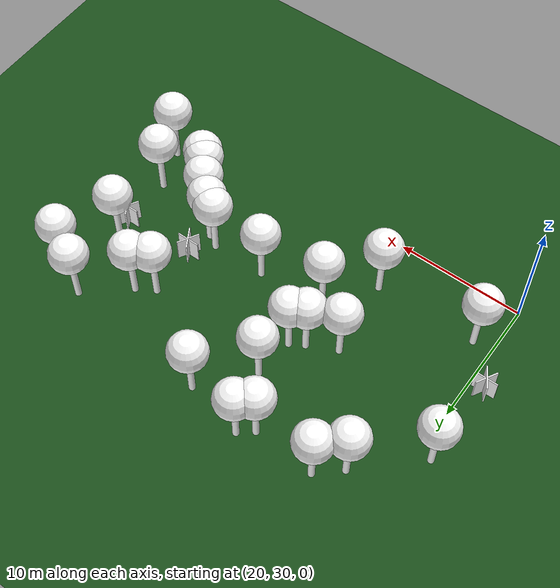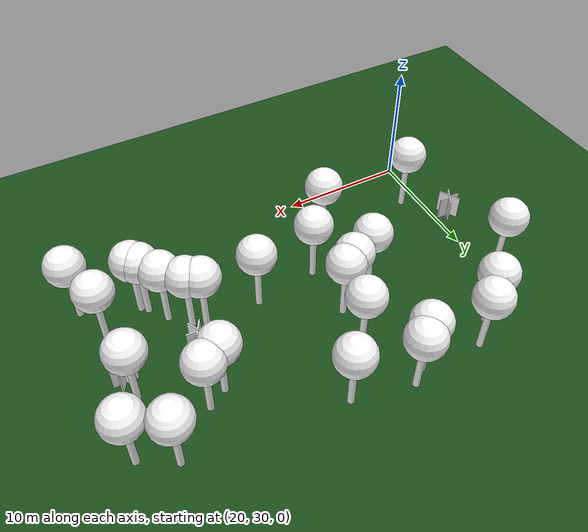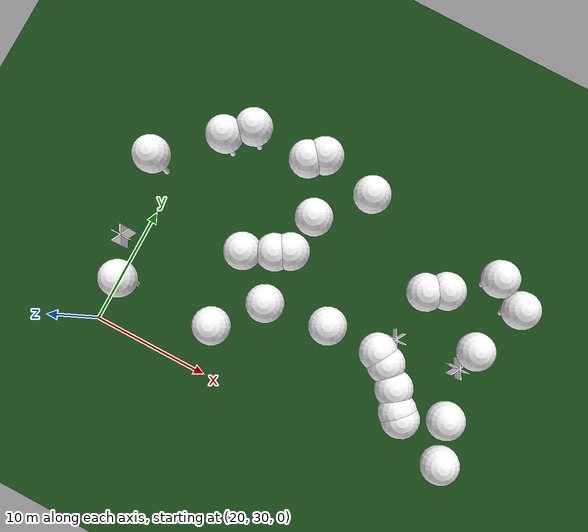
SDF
<sdf version="1.8">
 <world name="forest_world">
  <model name="fire_15">
   <pose>48.26 40.32 1.00 0 0 0.00</pose>
   <static>true</static>
   <link name="fire_link">
    <visual name="fire_15_fire_main_0">
     <geometry><box><size>1.80 0.10 2.00</size></box></geometry>
     <material>
      <ambient>0.7 0.35 0.0 1</ambient>
      <diffuse>1 1 1 1</diffuse>
      <specular>0 0 0 1</specular>
      <emissive>0 0 0 1</emissive>
      <pbr>
       <metal><albedo_map>textures/fire.png</albedo_map><metalness>0.0</metalness><roughness>0.6</roughness></metal>
      </pbr>
     </material>
     <transparency>0.0</transparency>
     <cast_shadows>false</cast_shadows>
    </visual>
    <visual name="fire_15_fire_60_1">
     <pose>0.00 0.00 0.10 0 0 1.05</pose>
     <geometry><box><size>1.80 0.10 2.00</size></box></geometry>
     <material>
      <ambient>0.7 0.35 0.0 1</ambient>
      <diffuse>1 1 1 1</diffuse>
      <specular>0 0 0 1</specular>
      <emissive>0 0 0 1</emissive>
      <pbr>
       <metal><albedo_map>textures/fire.png</albedo_map><metalness>0.0</metalness><roughness>0.6</roughness></metal>
      </pbr>
     </material>
     <transparency>0.0</transparency>
     <cast_shadows>false</cast_shadows>
    </visual>
    <visual name="fire_15_fire_120_2">
     <pose>0.00 0.00 0.20 0 0 2.09</pose>
     <geometry><box><size>1.80 0.10 2.00</size></box></geometry>
     <material>
      <ambient>0.7 0.35 0.0 1</ambient>
      <diffuse>1 1 1 1</diffuse>
      <specular>0 0 0 1</specular>
      <emissive>0 0 0 1</emissive>
      <pbr>
       <metal><albedo_map>textures/fire.png</albedo_map><metalness>0.0</metalness><roughness>0.6</roughness></metal>
      </pbr>
     </material>
     <transparency>0.0</transparency>
     <cast_shadows>false</cast_shadows>
    </visual>
    <light type="point" name="fire_15_light_0">
     <pose>0.40 0.00 0.50 0 0 0</pose>
     <diffuse>1.0 0.7 0.3 1</diffuse>
     <specular>1.0 0.8 0.3 1</specular>
     <intensity>2</intensity>
     <attenuation>
      <range>2</range>
      <constant>0.1</constant>
      <linear>0.05</linear>
      <quadratic>0.02</quadratic>
     </attenuation>
     <cast_shadows>false</cast_shadows>
    </light>
    <light type="point" name="fire_15_light_1">
     <pose>-0.20 0.35 0.50 0 0 0</pose>
     <diffuse>1.0 0.7 0.3 1</diffuse>
     <specular>1.0 0.8 0.3 1</specular>
     <intensity>2</intensity>
     <attenuation>
      <range>2</range>
      <constant>0.1</constant>
      <linear>0.05</linear>
      <quadratic>0.02</quadratic>
     </attenuation>
     <cast_shadows>false</cast_shadows>
    </light>
    <light type="point" name="fire_15_light_2">
     <pose>-0.20 -0.35 0.50 0 0 0</pose>
     <diffuse>1.0 0.7 0.3 1</diffuse>
     <specular>1.0 0.8 0.3 1</specular>
     <intensity>2</intensity>
     <attenuation>
      <range>2</range>
      <constant>0.1</constant>
      <linear>0.05</linear>
      <quadratic>0.02</quadratic>
     </attenuation>
     <cast_shadows>false</cast_shadows>
    </light>
   </link>
   <plugin filename="libignition-gazebo-pose-publisher-system.so" name="ignition::gazebo::systems::PosePublisher">
    <frame_id>world</frame_id>
    <publish_link_pose>true</publish_link_pose>
    <use_pose_vector_msg>true</use_pose_vector_msg>
    <static_publisher>true</static_publisher>
    <static_update_frequency>1</static_update_frequency>
   </plugin>
  </model>
  <model name="fire_20">
   <pose>42.69 40.01 1.00 0 0 0.00</pose>
   <static>true</static>
   <link name="fire_link">
    <visual name="fire_20_fire_main_0">
     <geometry><box><size>1.80 0.10 2.00</size></box></geometry>
     <material>
      <ambient>0.7 0.35 0.0 1</ambient>
      <diffuse>1 1 1 1</diffuse>
      <specular>0 0 0 1</specular>
      <emissive>0 0 0 1</emissive>
      <pbr>
       <metal><albedo_map>textures/fire.png</albedo_map><metalness>0.0</metalness><roughness>0.6</roughness></metal>
      </pbr>
     </material>
     <transparency>0.0</transparency>
     <cast_shadows>false</cast_shadows>
    </visual>
    <visual name="fire_20_fire_60_1">
     <pose>0.00 0.00 0.10 0 0 1.05</pose>
     <geometry><box><size>1.80 0.10 2.00</size></box></geometry>
     <material>
      <ambient>0.7 0.35 0.0 1</ambient>
      <diffuse>1 1 1 1</diffuse>
      <specular>0 0 0 1</specular>
      <emissive>0 0 0 1</emissive>
      <pbr>
       <metal><albedo_map>textures/fire.png</albedo_map><metalness>0.0</metalness><roughness>0.6</roughness></metal>
      </pbr>
     </material>
     <transparency>0.0</transparency>
     <cast_shadows>false</cast_shadows>
    </visual>
    <visual name="fire_20_fire_120_2">
     <pose>0.00 0.00 0.20 0 0 2.09</pose>
     <geometry><box><size>1.80 0.10 2.00</size></box></geometry>
     <material>
      <ambient>0.7 0.35 0.0 1</ambient>
      <diffuse>1 1 1 1</diffuse>
      <specular>0 0 0 1</specular>
      <emissive>0 0 0 1</emissive>
      <pbr>
       <metal><albedo_map>textures/fire.png</albedo_map><metalness>0.0</metalness><roughness>0.6</roughness></metal>
      </pbr>
     </material>
     <transparency>0.0</transparency>
     <cast_shadows>false</cast_shadows>
    </visual>
    <light type="point" name="fire_20_light_0">
     <pose>0.40 0.00 0.50 0 0 0</pose>
     <diffuse>1.0 0.7 0.3 1</diffuse>
     <specular>1.0 0.8 0.3 1</specular>
     <intensity>2</intensity>
     <attenuation>
      <range>2</range>
      <constant>0.1</constant>
      <linear>0.05</linear>
      <quadratic>0.02</quadratic>
     </attenuation>
     <cast_shadows>false</cast_shadows>
    </light>
    <light type="point" name="fire_20_light_1">
     <pose>-0.20 0.35 0.50 0 0 0</pose>
     <diffuse>1.0 0.7 0.3 1</diffuse>
     <specular>1.0 0.8 0.3 1</specular>
     <intensity>2</intensity>
     <attenuation>
      <range>2</range>
      <constant>0.1</constant>
      <linear>0.05</linear>
      <quadratic>0.02</quadratic>
     </attenuation>
     <cast_shadows>false</cast_shadows>
    </light>
    <light type="point" name="fire_20_light_2">
     <pose>-0.20 -0.35 0.50 0 0 0</pose>
     <diffuse>1.0 0.7 0.3 1</diffuse>
     <specular>1.0 0.8 0.3 1</specular>
     <intensity>2</intensity>
     <attenuation>
      <range>2</range>
      <constant>0.1</constant>
      <linear>0.05</linear>
      <quadratic>0.02</quadratic>
     </attenuation>
     <cast_shadows>false</cast_shadows>
    </light>
   </link>
   <plugin filename="libignition-gazebo-pose-publisher-system.so" name="ignition::gazebo::systems::PosePublisher">
    <frame_id>world</frame_id>
    <publish_link_pose>true</publish_link_pose>
    <use_pose_vector_msg>true</use_pose_vector_msg>
    <static_publisher>true</static_publisher>
    <static_update_frequency>1</static_update_frequency>
   </plugin>
  </model>
  <model name="fire_42">
   <pose>18.90 37.02 1.00 0 0 0.00</pose>
   <static>true</static>
   <link name="fire_link">
    <visual name="fire_42_fire_main_0">
     <geometry><box><size>1.80 0.10 2.00</size></box></geometry>
     <material>
      <ambient>0.7 0.35 0.0 1</ambient>
      <diffuse>1 1 1 1</diffuse>
      <specular>0 0 0 1</specular>
      <emissive>0 0 0 1</emissive>
      <pbr>
       <metal><albedo_map>textures/fire.png</albedo_map><metalness>0.0</metalness><roughness>0.6</roughness></metal>
      </pbr>
     </material>
     <transparency>0.0</transparency>
     <cast_shadows>false</cast_shadows>
    </visual>
    <visual name="fire_42_fire_60_1">
     <pose>0.00 0.00 0.10 0 0 1.05</pose>
     <geometry><box><size>1.80 0.10 2.00</size></box></geometry>
     <material>
      <ambient>0.7 0.35 0.0 1</ambient>
      <diffuse>1 1 1 1</diffuse>
      <specular>0 0 0 1</specular>
      <emissive>0 0 0 1</emissive>
      <pbr>
       <metal><albedo_map>textures/fire.png</albedo_map><metalness>0.0</metalness><roughness>0.6</roughness></metal>
      </pbr>
     </material>
     <transparency>0.0</transparency>
     <cast_shadows>false</cast_shadows>
    </visual>
    <visual name="fire_42_fire_120_2">
     <pose>0.00 0.00 0.20 0 0 2.09</pose>
     <geometry><box><size>1.80 0.10 2.00</size></box></geometry>
     <material>
      <ambient>0.7 0.35 0.0 1</ambient>
      <diffuse>1 1 1 1</diffuse>
      <specular>0 0 0 1</specular>
      <emissive>0 0 0 1</emissive>
      <pbr>
       <metal><albedo_map>textures/fire.png</albedo_map><metalness>0.0</metalness><roughness>0.6</roughness></metal>
      </pbr>
     </material>
     <transparency>0.0</transparency>
     <cast_shadows>false</cast_shadows>
    </visual>
    <light type="point" name="fire_42_light_0">
     <pose>0.40 0.00 0.50 0 0 0</pose>
     <diffuse>1.0 0.7 0.3 1</diffuse>
     <specular>1.0 0.8 0.3 1</specular>
     <intensity>2</intensity>
     <attenuation>
      <range>2</range>
      <constant>0.1</constant>
      <linear>0.05</linear>
      <quadratic>0.02</quadratic>
     </attenuation>
     <cast_shadows>false</cast_shadows>
    </light>
    <light type="point" name="fire_42_light_1">
     <pose>-0.20 0.35 0.50 0 0 0</pose>
     <diffuse>1.0 0.7 0.3 1</diffuse>
     <specular>1.0 0.8 0.3 1</specular>
     <intensity>2</intensity>
     <attenuation>
      <range>2</range>
      <constant>0.1</constant>
      <linear>0.05</linear>
      <quadratic>0.02</quadratic>
     </attenuation>
     <cast_shadows>false</cast_shadows>
    </light>
    <light type="point" name="fire_42_light_2">
     <pose>-0.20 -0.35 0.50 0 0 0</pose>
     <diffuse>1.0 0.7 0.3 1</diffuse>
     <specular>1.0 0.8 0.3 1</specular>
     <intensity>2</intensity>
     <attenuation>
      <range>2</range>
      <constant>0.1</constant>
      <linear>0.05</linear>
      <quadratic>0.02</quadratic>
     </attenuation>
     <cast_shadows>false</cast_shadows>
    </light>
   </link>
   <plugin filename="libignition-gazebo-pose-publisher-system.so" name="ignition::gazebo::systems::PosePublisher">
    <frame_id>world</frame_id>
    <publish_link_pose>true</publish_link_pose>
    <use_pose_vector_msg>true</use_pose_vector_msg>
    <static_publisher>true</static_publisher>
    <static_update_frequency>1</static_update_frequency>
   </plugin>
  </model>
  <model name="tree_simple475">
   <static>1</static>
   <link name="link">
    <pose>0 0 0.1 0 -0 0</pose>
    <collision name="collision_trunk">
     <pose>0 0 2 0 -0 0</pose>
     <geometry><cylinder><radius>0.25</radius><length>4</length></cylinder></geometry>
    </collision>
    <collision name="collision_treetop">
     <pose>0 0 5.2 0 -0 0</pose>
     <geometry><sphere><radius>1.5</radius></sphere></geometry>
    </collision>
    <visual name="trunk">
     <pose>0 0 2 0 -0 0</pose>
     <geometry><cylinder><radius>0.25</radius><length>4</length></cylinder></geometry>
     <material>
      <ambient>0.5 0.5 0.5 1</ambient>
      <diffuse>1.0 1.0 1.0 1</diffuse>
      <specular>0.0 0.0 0.0 1</specular>
      <pbr>
       <metal>
        <albedo_map>../worlds/textures/tree_simple_trunk.jpg</albedo_map>
        <metalness>0.0</metalness>
        <roughness>0.8</roughness>
       </metal>
      </pbr>
     </material>
    </visual>
    <visual name="treetop">
     <pose>0 0 5.2 0 -0 0</pose>
     <geometry><sphere><radius>1.5</radius></sphere></geometry>
     <material>
      <ambient>0.5 0.5 0.5 1</ambient>
      <diffuse>1.0 1.0 1.0 1</diffuse>
      <specular>0.0 0.0 0.0 1</specular>
      <pbr>
       <metal>
        <albedo_map>../worlds/textures/tree_simple_treetop.jpg</albedo_map>
        <metalness>0.0</metalness>
        <roughness>0.9</roughness>
       </metal>
      </pbr>
     </material>
    </visual>
   </link>
   <pose>30.9431222124 49.7431013716 0 0 -0 0</pose>
  </model>
  <model name="tree_simple459">
   <static>1</static>
   <link name="link">
    <pose>0 0 0.1 0 -0 0</pose>
    <collision name="collision_trunk">
     <pose>0 0 2 0 -0 0</pose>
     <geometry><cylinder><radius>0.25</radius><length>4</length></cylinder></geometry>
    </collision>
    <collision name="collision_treetop">
     <pose>0 0 5.2 0 -0 0</pose>
     <geometry><sphere><radius>1.5</radius></sphere></geometry>
    </collision>
    <visual name="trunk">
     <pose>0 0 2 0 -0 0</pose>
     <geometry><cylinder><radius>0.25</radius><length>4</length></cylinder></geometry>
     <material>
      <ambient>0.5 0.5 0.5 1</ambient>
      <diffuse>1.0 1.0 1.0 1</diffuse>
      <specular>0.0 0.0 0.0 1</specular>
      <pbr>
       <metal>
        <albedo_map>../worlds/textures/tree_simple_trunk.jpg</albedo_map>
        <metalness>0.0</metalness>
        <roughness>0.8</roughness>
       </metal>
      </pbr>
     </material>
    </visual>
    <visual name="treetop">
     <pose>0 0 5.2 0 -0 0</pose>
     <geometry><sphere><radius>1.5</radius></sphere></geometry>
     <material>
      <ambient>0.5 0.5 0.5 1</ambient>
      <diffuse>1.0 1.0 1.0 1</diffuse>
      <specular>0.0 0.0 0.0 1</specular>
      <pbr>
       <metal>
        <albedo_map>../worlds/textures/tree_simple_treetop.jpg</albedo_map>
        <metalness>0.0</metalness>
        <roughness>0.9</roughness>
       </metal>
      </pbr>
     </material>
    </visual>
   </link>
   <pose>23.3051385383 47.6025012909 0 0 -0 0</pose>
  </model>
  <model name="tree_simple452">
   <static>1</static>
   <link name="link">
    <pose>0 0 0.1 0 -0 0</pose>
    <collision name="collision_trunk">
     <pose>0 0 2 0 -0 0</pose>
     <geometry><cylinder><radius>0.25</radius><length>4</length></cylinder></geometry>
    </collision>
    <collision name="collision_treetop">
     <pose>0 0 5.2 0 -0 0</pose>
     <geometry><sphere><radius>1.5</radius></sphere></geometry>
    </collision>
    <visual name="trunk">
     <pose>0 0 2 0 -0 0</pose>
     <geometry><cylinder><radius>0.25</radius><length>4</length></cylinder></geometry>
     <material>
      <ambient>0.5 0.5 0.5 1</ambient>
      <diffuse>1.0 1.0 1.0 1</diffuse>
      <specular>0.0 0.0 0.0 1</specular>
      <pbr>
       <metal>
        <albedo_map>../worlds/textures/tree_simple_trunk.jpg</albedo_map>
        <metalness>0.0</metalness>
        <roughness>0.8</roughness>
       </metal>
      </pbr>
     </material>
    </visual>
    <visual name="treetop">
     <pose>0 0 5.2 0 -0 0</pose>
     <geometry><sphere><radius>1.5</radius></sphere></geometry>
     <material>
      <ambient>0.5 0.5 0.5 1</ambient>
      <diffuse>1.0 1.0 1.0 1</diffuse>
      <specular>0.0 0.0 0.0 1</specular>
      <pbr>
       <metal>
        <albedo_map>../worlds/textures/tree_simple_treetop.jpg</albedo_map>
        <metalness>0.0</metalness>
        <roughness>0.9</roughness>
       </metal>
      </pbr>
     </material>
    </visual>
   </link>
   <pose>21.4881506157 34.0286005496 0 0 -0 0</pose>
  </model>
  <model name="tree_simple449">
   <static>1</static>
   <link name="link">
    <pose>0 0 0.1 0 -0 0</pose>
    <collision name="collision_trunk">
     <pose>0 0 2 0 -0 0</pose>
     <geometry><cylinder><radius>0.25</radius><length>4</length></cylinder></geometry>
    </collision>
    <collision name="collision_treetop">
     <pose>0 0 5.2 0 -0 0</pose>
     <geometry><sphere><radius>1.5</radius></sphere></geometry>
    </collision>
    <visual name="trunk">
     <pose>0 0 2 0 -0 0</pose>
     <geometry><cylinder><radius>0.25</radius><length>4</length></cylinder></geometry>
     <material>
      <ambient>0.5 0.5 0.5 1</ambient>
      <diffuse>1.0 1.0 1.0 1</diffuse>
      <specular>0.0 0.0 0.0 1</specular>
      <pbr>
       <metal>
        <albedo_map>../worlds/textures/tree_simple_trunk.jpg</albedo_map>
        <metalness>0.0</metalness>
        <roughness>0.8</roughness>
       </metal>
      </pbr>
     </material>
    </visual>
    <visual name="treetop">
     <pose>0 0 5.2 0 -0 0</pose>
     <geometry><sphere><radius>1.5</radius></sphere></geometry>
     <material>
      <ambient>0.5 0.5 0.5 1</ambient>
      <diffuse>1.0 1.0 1.0 1</diffuse>
      <specular>0.0 0.0 0.0 1</specular>
      <pbr>
       <metal>
        <albedo_map>../worlds/textures/tree_simple_treetop.jpg</albedo_map>
        <metalness>0.0</metalness>
        <roughness>0.9</roughness>
       </metal>
      </pbr>
     </material>
    </visual>
   </link>
   <pose>32.2301413543 37.584175072 0 0 -0 0</pose>
  </model>
  <model name="tree_simple435">
   <static>1</static>
   <link name="link">
    <pose>0 0 0.1 0 -0 0</pose>
    <collision name="collision_trunk">
     <pose>0 0 2 0 -0 0</pose>
     <geometry><cylinder><radius>0.25</radius><length>4</length></cylinder></geometry>
    </collision>
    <collision name="collision_treetop">
     <pose>0 0 5.2 0 -0 0</pose>
     <geometry><sphere><radius>1.5</radius></sphere></geometry>
    </collision>
    <visual name="trunk">
     <pose>0 0 2 0 -0 0</pose>
     <geometry><cylinder><radius>0.25</radius><length>4</length></cylinder></geometry>
     <material>
      <ambient>0.5 0.5 0.5 1</ambient>
      <diffuse>1.0 1.0 1.0 1</diffuse>
      <specular>0.0 0.0 0.0 1</specular>
      <pbr>
       <metal>
        <albedo_map>../worlds/textures/tree_simple_trunk.jpg</albedo_map>
        <metalness>0.0</metalness>
        <roughness>0.8</roughness>
       </metal>
      </pbr>
     </material>
    </visual>
    <visual name="treetop">
     <pose>0 0 5.2 0 -0 0</pose>
     <geometry><sphere><radius>1.5</radius></sphere></geometry>
     <material>
      <ambient>0.5 0.5 0.5 1</ambient>
      <diffuse>1.0 1.0 1.0 1</diffuse>
      <specular>0.0 0.0 0.0 1</specular>
      <pbr>
       <metal>
        <albedo_map>../worlds/textures/tree_simple_treetop.jpg</albedo_map>
        <metalness>0.0</metalness>
        <roughness>0.9</roughness>
       </metal>
      </pbr>
     </material>
    </visual>
   </link>
   <pose>25.0532985597 49.162593115 0 0 -0 0</pose>
  </model>
  <model name="tree_simple426">
   <static>1</static>
   <link name="link">
    <pose>0 0 0.1 0 -0 0</pose>
    <collision name="collision_trunk">
     <pose>0 0 2 0 -0 0</pose>
     <geometry><cylinder><radius>0.25</radius><length>4</length></cylinder></geometry>
    </collision>
    <collision name="collision_treetop">
     <pose>0 0 5.2 0 -0 0</pose>
     <geometry><sphere><radius>1.5</radius></sphere></geometry>
    </collision>
    <visual name="trunk">
     <pose>0 0 2 0 -0 0</pose>
     <geometry><cylinder><radius>0.25</radius><length>4</length></cylinder></geometry>
     <material>
      <ambient>0.5 0.5 0.5 1</ambient>
      <diffuse>1.0 1.0 1.0 1</diffuse>
      <specular>0.0 0.0 0.0 1</specular>
      <pbr>
       <metal>
        <albedo_map>../worlds/textures/tree_simple_trunk.jpg</albedo_map>
        <metalness>0.0</metalness>
        <roughness>0.8</roughness>
       </metal>
      </pbr>
     </material>
    </visual>
    <visual name="treetop">
     <pose>0 0 5.2 0 -0 0</pose>
     <geometry><sphere><radius>1.5</radius></sphere></geometry>
     <material>
      <ambient>0.5 0.5 0.5 1</ambient>
      <diffuse>1.0 1.0 1.0 1</diffuse>
      <specular>0.0 0.0 0.0 1</specular>
      <pbr>
       <metal>
        <albedo_map>../worlds/textures/tree_simple_treetop.jpg</albedo_map>
        <metalness>0.0</metalness>
        <roughness>0.9</roughness>
       </metal>
      </pbr>
     </material>
    </visual>
   </link>
   <pose>48.2961501598 36.1951986296 0 0 -0 0</pose>
  </model>
  <model name="tree_simple414">
   <static>1</static>
   <link name="link">
    <pose>0 0 0.1 0 -0 0</pose>
    <collision name="collision_trunk">
     <pose>0 0 2 0 -0 0</pose>
     <geometry><cylinder><radius>0.25</radius><length>4</length></cylinder></geometry>
    </collision>
    <collision name="collision_treetop">
     <pose>0 0 5.2 0 -0 0</pose>
     <geometry><sphere><radius>1.5</radius></sphere></geometry>
    </collision>
    <visual name="trunk">
     <pose>0 0 2 0 -0 0</pose>
     <geometry><cylinder><radius>0.25</radius><length>4</length></cylinder></geometry>
     <material>
      <ambient>0.5 0.5 0.5 1</ambient>
      <diffuse>1.0 1.0 1.0 1</diffuse>
      <specular>0.0 0.0 0.0 1</specular>
      <pbr>
       <metal>
        <albedo_map>../worlds/textures/tree_simple_trunk.jpg</albedo_map>
        <metalness>0.0</metalness>
        <roughness>0.8</roughness>
       </metal>
      </pbr>
     </material>
    </visual>
    <visual name="treetop">
     <pose>0 0 5.2 0 -0 0</pose>
     <geometry><sphere><radius>1.5</radius></sphere></geometry>
     <material>
      <ambient>0.5 0.5 0.5 1</ambient>
      <diffuse>1.0 1.0 1.0 1</diffuse>
      <specular>0.0 0.0 0.0 1</specular>
      <pbr>
       <metal>
        <albedo_map>../worlds/textures/tree_simple_treetop.jpg</albedo_map>
        <metalness>0.0</metalness>
        <roughness>0.9</roughness>
       </metal>
      </pbr>
     </material>
    </visual>
   </link>
   <pose>44.7953546514 35.1223055557 0 0 -0 0</pose>
  </model>
  <model name="tree_simple388">
   <static>1</static>
   <link name="link">
    <pose>0 0 0.1 0 -0 0</pose>
    <collision name="collision_trunk">
     <pose>0 0 2 0 -0 0</pose>
     <geometry><cylinder><radius>0.25</radius><length>4</length></cylinder></geometry>
    </collision>
    <collision name="collision_treetop">
     <pose>0 0 5.2 0 -0 0</pose>
     <geometry><sphere><radius>1.5</radius></sphere></geometry>
    </collision>
    <visual name="trunk">
     <pose>0 0 2 0 -0 0</pose>
     <geometry><cylinder><radius>0.25</radius><length>4</length></cylinder></geometry>
     <material>
      <ambient>0.5 0.5 0.5 1</ambient>
      <diffuse>1.0 1.0 1.0 1</diffuse>
      <specular>0.0 0.0 0.0 1</specular>
      <pbr>
       <metal>
        <albedo_map>../worlds/textures/tree_simple_trunk.jpg</albedo_map>
        <metalness>0.0</metalness>
        <roughness>0.8</roughness>
       </metal>
      </pbr>
     </material>
    </visual>
    <visual name="treetop">
     <pose>0 0 5.2 0 -0 0</pose>
     <geometry><sphere><radius>1.5</radius></sphere></geometry>
     <material>
      <ambient>0.5 0.5 0.5 1</ambient>
      <diffuse>1.0 1.0 1.0 1</diffuse>
      <specular>0.0 0.0 0.0 1</specular>
      <pbr>
       <metal>
        <albedo_map>../worlds/textures/tree_simple_treetop.jpg</albedo_map>
        <metalness>0.0</metalness>
        <roughness>0.9</roughness>
       </metal>
      </pbr>
     </material>
    </visual>
   </link>
   <pose>42.4041487093 37.8396173547 0 0 -0 0</pose>
  </model>
  <model name="tree_simple384">
   <static>1</static>
   <link name="link">
    <pose>0 0 0.1 0 -0 0</pose>
    <collision name="collision_trunk">
     <pose>0 0 2 0 -0 0</pose>
     <geometry><cylinder><radius>0.25</radius><length>4</length></cylinder></geometry>
    </collision>
    <collision name="collision_treetop">
     <pose>0 0 5.2 0 -0 0</pose>
     <geometry><sphere><radius>1.5</radius></sphere></geometry>
    </collision>
    <visual name="trunk">
     <pose>0 0 2 0 -0 0</pose>
     <geometry><cylinder><radius>0.25</radius><length>4</length></cylinder></geometry>
     <material>
      <ambient>0.5 0.5 0.5 1</ambient>
      <diffuse>1.0 1.0 1.0 1</diffuse>
      <specular>0.0 0.0 0.0 1</specular>
      <pbr>
       <metal>
        <albedo_map>../worlds/textures/tree_simple_trunk.jpg</albedo_map>
        <metalness>0.0</metalness>
        <roughness>0.8</roughness>
       </metal>
      </pbr>
     </material>
    </visual>
    <visual name="treetop">
     <pose>0 0 5.2 0 -0 0</pose>
     <geometry><sphere><radius>1.5</radius></sphere></geometry>
     <material>
      <ambient>0.5 0.5 0.5 1</ambient>
      <diffuse>1.0 1.0 1.0 1</diffuse>
      <specular>0.0 0.0 0.0 1</specular>
      <pbr>
       <metal>
        <albedo_map>../worlds/textures/tree_simple_treetop.jpg</albedo_map>
        <metalness>0.0</metalness>
        <roughness>0.9</roughness>
       </metal>
      </pbr>
     </material>
    </visual>
   </link>
   <pose>47.965270182 41.8315973536 0 0 -0 0</pose>
  </model>
  <model name="tree_simple372">
   <static>1</static>
   <link name="link">
    <pose>0 0 0.1 0 -0 0</pose>
    <collision name="collision_trunk">
     <pose>0 0 2 0 -0 0</pose>
     <geometry><cylinder><radius>0.25</radius><length>4</length></cylinder></geometry>
    </collision>
    <collision name="collision_treetop">
     <pose>0 0 5.2 0 -0 0</pose>
     <geometry><sphere><radius>1.5</radius></sphere></geometry>
    </collision>
    <visual name="trunk">
     <pose>0 0 2 0 -0 0</pose>
     <geometry><cylinder><radius>0.25</radius><length>4</length></cylinder></geometry>
     <material>
      <ambient>0.5 0.5 0.5 1</ambient>
      <diffuse>1.0 1.0 1.0 1</diffuse>
      <specular>0.0 0.0 0.0 1</specular>
      <pbr>
       <metal>
        <albedo_map>../worlds/textures/tree_simple_trunk.jpg</albedo_map>
        <metalness>0.0</metalness>
        <roughness>0.8</roughness>
       </metal>
      </pbr>
     </material>
    </visual>
    <visual name="treetop">
     <pose>0 0 5.2 0 -0 0</pose>
     <geometry><sphere><radius>1.5</radius></sphere></geometry>
     <material>
      <ambient>0.5 0.5 0.5 1</ambient>
      <diffuse>1.0 1.0 1.0 1</diffuse>
      <specular>0.0 0.0 0.0 1</specular>
      <pbr>
       <metal>
        <albedo_map>../worlds/textures/tree_simple_treetop.jpg</albedo_map>
        <metalness>0.0</metalness>
        <roughness>0.9</roughness>
       </metal>
      </pbr>
     </material>
    </visual>
   </link>
   <pose>19.0807104519 43.6051965294 0 0 -0 0</pose>
  </model>
  <model name="tree_simple366">
   <static>1</static>
   <link name="link">
    <pose>0 0 0.1 0 -0 0</pose>
    <collision name="collision_trunk">
     <pose>0 0 2 0 -0 0</pose>
     <geometry><cylinder><radius>0.25</radius><length>4</length></cylinder></geometry>
    </collision>
    <collision name="collision_treetop">
     <pose>0 0 5.2 0 -0 0</pose>
     <geometry><sphere><radius>1.5</radius></sphere></geometry>
    </collision>
    <visual name="trunk">
     <pose>0 0 2 0 -0 0</pose>
     <geometry><cylinder><radius>0.25</radius><length>4</length></cylinder></geometry>
     <material>
      <ambient>0.5 0.5 0.5 1</ambient>
      <diffuse>1.0 1.0 1.0 1</diffuse>
      <specular>0.0 0.0 0.0 1</specular>
      <pbr>
       <metal>
        <albedo_map>../worlds/textures/tree_simple_trunk.jpg</albedo_map>
        <metalness>0.0</metalness>
        <roughness>0.8</roughness>
       </metal>
      </pbr>
     </material>
    </visual>
    <visual name="treetop">
     <pose>0 0 5.2 0 -0 0</pose>
     <geometry><sphere><radius>1.5</radius></sphere></geometry>
     <material>
      <ambient>0.5 0.5 0.5 1</ambient>
      <diffuse>1.0 1.0 1.0 1</diffuse>
      <specular>0.0 0.0 0.0 1</specular>
      <pbr>
       <metal>
        <albedo_map>../worlds/textures/tree_simple_treetop.jpg</albedo_map>
        <metalness>0.0</metalness>
        <roughness>0.9</roughness>
       </metal>
      </pbr>
     </material>
    </visual>
   </link>
   <pose>37.2116014065 38.3075288524 0 0 -0 0</pose>
  </model>
  <model name="tree_simple337">
   <static>1</static>
   <link name="link">
    <pose>0 0 0.1 0 -0 0</pose>
    <collision name="collision_trunk">
     <pose>0 0 2 0 -0 0</pose>
     <geometry><cylinder><radius>0.25</radius><length>4</length></cylinder></geometry>
    </collision>
    <collision name="collision_treetop">
     <pose>0 0 5.2 0 -0 0</pose>
     <geometry><sphere><radius>1.5</radius></sphere></geometry>
    </collision>
    <visual name="trunk">
     <pose>0 0 2 0 -0 0</pose>
     <geometry><cylinder><radius>0.25</radius><length>4</length></cylinder></geometry>
     <material>
      <ambient>0.5 0.5 0.5 1</ambient>
      <diffuse>1.0 1.0 1.0 1</diffuse>
      <specular>0.0 0.0 0.0 1</specular>
      <pbr>
       <metal>
        <albedo_map>../worlds/textures/tree_simple_trunk.jpg</albedo_map>
        <metalness>0.0</metalness>
        <roughness>0.8</roughness>
       </metal>
      </pbr>
     </material>
    </visual>
    <visual name="treetop">
     <pose>0 0 5.2 0 -0 0</pose>
     <geometry><sphere><radius>1.5</radius></sphere></geometry>
     <material>
      <ambient>0.5 0.5 0.5 1</ambient>
      <diffuse>1.0 1.0 1.0 1</diffuse>
      <specular>0.0 0.0 0.0 1</specular>
      <pbr>
       <metal>
        <albedo_map>../worlds/textures/tree_simple_treetop.jpg</albedo_map>
        <metalness>0.0</metalness>
        <roughness>0.9</roughness>
       </metal>
      </pbr>
     </material>
    </visual>
   </link>
   <pose>43.9549385006 44.8684303608 0 0 -0 0</pose>
  </model>
  <model name="tree_simple306">
   <static>1</static>
   <link name="link">
    <pose>0 0 0.1 0 -0 0</pose>
    <collision name="collision_trunk">
     <pose>0 0 2 0 -0 0</pose>
     <geometry><cylinder><radius>0.25</radius><length>4</length></cylinder></geometry>
    </collision>
    <collision name="collision_treetop">
     <pose>0 0 5.2 0 -0 0</pose>
     <geometry><sphere><radius>1.5</radius></sphere></geometry>
    </collision>
    <visual name="trunk">
     <pose>0 0 2 0 -0 0</pose>
     <geometry><cylinder><radius>0.25</radius><length>4</length></cylinder></geometry>
     <material>
      <ambient>0.5 0.5 0.5 1</ambient>
      <diffuse>1.0 1.0 1.0 1</diffuse>
      <specular>0.0 0.0 0.0 1</specular>
      <pbr>
       <metal>
        <albedo_map>../worlds/textures/tree_simple_trunk.jpg</albedo_map>
        <metalness>0.0</metalness>
        <roughness>0.8</roughness>
       </metal>
      </pbr>
     </material>
    </visual>
    <visual name="treetop">
     <pose>0 0 5.2 0 -0 0</pose>
     <geometry><sphere><radius>1.5</radius></sphere></geometry>
     <material>
      <ambient>0.5 0.5 0.5 1</ambient>
      <diffuse>1.0 1.0 1.0 1</diffuse>
      <specular>0.0 0.0 0.0 1</specular>
      <pbr>
       <metal>
        <albedo_map>../worlds/textures/tree_simple_treetop.jpg</albedo_map>
        <metalness>0.0</metalness>
        <roughness>0.9</roughness>
       </metal>
      </pbr>
     </material>
    </visual>
   </link>
   <pose>41.4749799485 38.3641433375 0 0 -0 0</pose>
  </model>
  <model name="tree_simple294">
   <static>1</static>
   <link name="link">
    <pose>0 0 0.1 0 -0 0</pose>
    <collision name="collision_trunk">
     <pose>0 0 2 0 -0 0</pose>
     <geometry><cylinder><radius>0.25</radius><length>4</length></cylinder></geometry>
    </collision>
    <collision name="collision_treetop">
     <pose>0 0 5.2 0 -0 0</pose>
     <geometry><sphere><radius>1.5</radius></sphere></geometry>
    </collision>
    <visual name="trunk">
     <pose>0 0 2 0 -0 0</pose>
     <geometry><cylinder><radius>0.25</radius><length>4</length></cylinder></geometry>
     <material>
      <ambient>0.5 0.5 0.5 1</ambient>
      <diffuse>1.0 1.0 1.0 1</diffuse>
      <specular>0.0 0.0 0.0 1</specular>
      <pbr>
       <metal>
        <albedo_map>../worlds/textures/tree_simple_trunk.jpg</albedo_map>
        <metalness>0.0</metalness>
        <roughness>0.8</roughness>
       </metal>
      </pbr>
     </material>
    </visual>
    <visual name="treetop">
     <pose>0 0 5.2 0 -0 0</pose>
     <geometry><sphere><radius>1.5</radius></sphere></geometry>
     <material>
      <ambient>0.5 0.5 0.5 1</ambient>
      <diffuse>1.0 1.0 1.0 1</diffuse>
      <specular>0.0 0.0 0.0 1</specular>
      <pbr>
       <metal>
        <albedo_map>../worlds/textures/tree_simple_treetop.jpg</albedo_map>
        <metalness>0.0</metalness>
        <roughness>0.9</roughness>
       </metal>
      </pbr>
     </material>
    </visual>
   </link>
   <pose>29.4568486027 34.1994676111 0 0 -0 0</pose>
  </model>
  <model name="tree_simple230">
   <static>1</static>
   <link name="link">
    <pose>0 0 0.1 0 -0 0</pose>
    <collision name="collision_trunk">
     <pose>0 0 2 0 -0 0</pose>
     <geometry><cylinder><radius>0.25</radius><length>4</length></cylinder></geometry>
    </collision>
    <collision name="collision_treetop">
     <pose>0 0 5.2 0 -0 0</pose>
     <geometry><sphere><radius>1.5</radius></sphere></geometry>
    </collision>
    <visual name="trunk">
     <pose>0 0 2 0 -0 0</pose>
     <geometry><cylinder><radius>0.25</radius><length>4</length></cylinder></geometry>
     <material>
      <ambient>0.5 0.5 0.5 1</ambient>
      <diffuse>1.0 1.0 1.0 1</diffuse>
      <specular>0.0 0.0 0.0 1</specular>
      <pbr>
       <metal>
        <albedo_map>../worlds/textures/tree_simple_trunk.jpg</albedo_map>
        <metalness>0.0</metalness>
        <roughness>0.8</roughness>
       </metal>
      </pbr>
     </material>
    </visual>
    <visual name="treetop">
     <pose>0 0 5.2 0 -0 0</pose>
     <geometry><sphere><radius>1.5</radius></sphere></geometry>
     <material>
      <ambient>0.5 0.5 0.5 1</ambient>
      <diffuse>1.0 1.0 1.0 1</diffuse>
      <specular>0.0 0.0 0.0 1</specular>
      <pbr>
       <metal>
        <albedo_map>../worlds/textures/tree_simple_treetop.jpg</albedo_map>
        <metalness>0.0</metalness>
        <roughness>0.9</roughness>
       </metal>
      </pbr>
     </material>
    </visual>
   </link>
   <pose>49.3839982887 33.0886722223 0 0 -0 0</pose>
  </model>
  <model name="tree_simple197">
   <static>1</static>
   <link name="link">
    <pose>0 0 0.1 0 -0 0</pose>
    <collision name="collision_trunk">
     <pose>0 0 2 0 -0 0</pose>
     <geometry><cylinder><radius>0.25</radius><length>4</length></cylinder></geometry>
    </collision>
    <collision name="collision_treetop">
     <pose>0 0 5.2 0 -0 0</pose>
     <geometry><sphere><radius>1.5</radius></sphere></geometry>
    </collision>
    <visual name="trunk">
     <pose>0 0 2 0 -0 0</pose>
     <geometry><cylinder><radius>0.25</radius><length>4</length></cylinder></geometry>
     <material>
      <ambient>0.5 0.5 0.5 1</ambient>
      <diffuse>1.0 1.0 1.0 1</diffuse>
      <specular>0.0 0.0 0.0 1</specular>
      <pbr>
       <metal>
        <albedo_map>../worlds/textures/tree_simple_trunk.jpg</albedo_map>
        <metalness>0.0</metalness>
        <roughness>0.8</roughness>
       </metal>
      </pbr>
     </material>
    </visual>
    <visual name="treetop">
     <pose>0 0 5.2 0 -0 0</pose>
     <geometry><sphere><radius>1.5</radius></sphere></geometry>
     <material>
      <ambient>0.5 0.5 0.5 1</ambient>
      <diffuse>1.0 1.0 1.0 1</diffuse>
      <specular>0.0 0.0 0.0 1</specular>
      <pbr>
       <metal>
        <albedo_map>../worlds/textures/tree_simple_treetop.jpg</albedo_map>
        <metalness>0.0</metalness>
        <roughness>0.9</roughness>
       </metal>
      </pbr>
     </material>
    </visual>
   </link>
   <pose>45.2259514073 34.7129577048 0 0 -0 0</pose>
  </model>
  <model name="tree_simple180">
   <static>1</static>
   <link name="link">
    <pose>0 0 0.1 0 -0 0</pose>
    <collision name="collision_trunk">
     <pose>0 0 2 0 -0 0</pose>
     <geometry><cylinder><radius>0.25</radius><length>4</length></cylinder></geometry>
    </collision>
    <collision name="collision_treetop">
     <pose>0 0 5.2 0 -0 0</pose>
     <geometry><sphere><radius>1.5</radius></sphere></geometry>
    </collision>
    <visual name="trunk">
     <pose>0 0 2 0 -0 0</pose>
     <geometry><cylinder><radius>0.25</radius><length>4</length></cylinder></geometry>
     <material>
      <ambient>0.5 0.5 0.5 1</ambient>
      <diffuse>1.0 1.0 1.0 1</diffuse>
      <specular>0.0 0.0 0.0 1</specular>
      <pbr>
       <metal>
        <albedo_map>../worlds/textures/tree_simple_trunk.jpg</albedo_map>
        <metalness>0.0</metalness>
        <roughness>0.8</roughness>
       </metal>
      </pbr>
     </material>
    </visual>
    <visual name="treetop">
     <pose>0 0 5.2 0 -0 0</pose>
     <geometry><sphere><radius>1.5</radius></sphere></geometry>
     <material>
      <ambient>0.5 0.5 0.5 1</ambient>
      <diffuse>1.0 1.0 1.0 1</diffuse>
      <specular>0.0 0.0 0.0 1</specular>
      <pbr>
       <metal>
        <albedo_map>../worlds/textures/tree_simple_treetop.jpg</albedo_map>
        <metalness>0.0</metalness>
        <roughness>0.9</roughness>
       </metal>
      </pbr>
     </material>
    </visual>
   </link>
   <pose>31.0354412198 41.3621247095 0 0 -0 0</pose>
  </model>
  <model name="tree_simple164">
   <static>1</static>
   <link name="link">
    <pose>0 0 0.1 0 -0 0</pose>
    <collision name="collision_trunk">
     <pose>0 0 2 0 -0 0</pose>
     <geometry><cylinder><radius>0.25</radius><length>4</length></cylinder></geometry>
    </collision>
    <collision name="collision_treetop">
     <pose>0 0 5.2 0 -0 0</pose>
     <geometry><sphere><radius>1.5</radius></sphere></geometry>
    </collision>
    <visual name="trunk">
     <pose>0 0 2 0 -0 0</pose>
     <geometry><cylinder><radius>0.25</radius><length>4</length></cylinder></geometry>
     <material>
      <ambient>0.5 0.5 0.5 1</ambient>
      <diffuse>1.0 1.0 1.0 1</diffuse>
      <specular>0.0 0.0 0.0 1</specular>
      <pbr>
       <metal>
        <albedo_map>../worlds/textures/tree_simple_trunk.jpg</albedo_map>
        <metalness>0.0</metalness>
        <roughness>0.8</roughness>
       </metal>
      </pbr>
     </material>
    </visual>
    <visual name="treetop">
     <pose>0 0 5.2 0 -0 0</pose>
     <geometry><sphere><radius>1.5</radius></sphere></geometry>
     <material>
      <ambient>0.5 0.5 0.5 1</ambient>
      <diffuse>1.0 1.0 1.0 1</diffuse>
      <specular>0.0 0.0 0.0 1</specular>
      <pbr>
       <metal>
        <albedo_map>../worlds/textures/tree_simple_treetop.jpg</albedo_map>
        <metalness>0.0</metalness>
        <roughness>0.9</roughness>
       </metal>
      </pbr>
     </material>
    </visual>
   </link>
   <pose>32.4161735763 45.136147052 0 0 -0 0</pose>
  </model>
  <model name="tree_simple159">
   <static>1</static>
   <link name="link">
    <pose>0 0 0.1 0 -0 0</pose>
    <collision name="collision_trunk">
     <pose>0 0 2 0 -0 0</pose>
     <geometry><cylinder><radius>0.25</radius><length>4</length></cylinder></geometry>
    </collision>
    <collision name="collision_treetop">
     <pose>0 0 5.2 0 -0 0</pose>
     <geometry><sphere><radius>1.5</radius></sphere></geometry>
    </collision>
    <visual name="trunk">
     <pose>0 0 2 0 -0 0</pose>
     <geometry><cylinder><radius>0.25</radius><length>4</length></cylinder></geometry>
     <material>
      <ambient>0.5 0.5 0.5 1</ambient>
      <diffuse>1.0 1.0 1.0 1</diffuse>
      <specular>0.0 0.0 0.0 1</specular>
      <pbr>
       <metal>
        <albedo_map>../worlds/textures/tree_simple_trunk.jpg</albedo_map>
        <metalness>0.0</metalness>
        <roughness>0.8</roughness>
       </metal>
      </pbr>
     </material>
    </visual>
    <visual name="treetop">
     <pose>0 0 5.2 0 -0 0</pose>
     <geometry><sphere><radius>1.5</radius></sphere></geometry>
     <material>
      <ambient>0.5 0.5 0.5 1</ambient>
      <diffuse>1.0 1.0 1.0 1</diffuse>
      <specular>0.0 0.0 0.0 1</specular>
      <pbr>
       <metal>
        <albedo_map>../worlds/textures/tree_simple_treetop.jpg</albedo_map>
        <metalness>0.0</metalness>
        <roughness>0.9</roughness>
       </metal>
      </pbr>
     </material>
    </visual>
   </link>
   <pose>28.8379877366 40.3060921844 0 0 -0 0</pose>
  </model>
  <model name="tree_simple144">
   <static>1</static>
   <link name="link">
    <pose>0 0 0.1 0 -0 0</pose>
    <collision name="collision_trunk">
     <pose>0 0 2 0 -0 0</pose>
     <geometry><cylinder><radius>0.25</radius><length>4</length></cylinder></geometry>
    </collision>
    <collision name="collision_treetop">
     <pose>0 0 5.2 0 -0 0</pose>
     <geometry><sphere><radius>1.5</radius></sphere></geometry>
    </collision>
    <visual name="trunk">
     <pose>0 0 2 0 -0 0</pose>
     <geometry><cylinder><radius>0.25</radius><length>4</length></cylinder></geometry>
     <material>
      <ambient>0.5 0.5 0.5 1</ambient>
      <diffuse>1.0 1.0 1.0 1</diffuse>
      <specular>0.0 0.0 0.0 1</specular>
      <pbr>
       <metal>
        <albedo_map>../worlds/textures/tree_simple_trunk.jpg</albedo_map>
        <metalness>0.0</metalness>
        <roughness>0.8</roughness>
       </metal>
      </pbr>
     </material>
    </visual>
    <visual name="treetop">
     <pose>0 0 5.2 0 -0 0</pose>
     <geometry><sphere><radius>1.5</radius></sphere></geometry>
     <material>
      <ambient>0.5 0.5 0.5 1</ambient>
      <diffuse>1.0 1.0 1.0 1</diffuse>
      <specular>0.0 0.0 0.0 1</specular>
      <pbr>
       <metal>
        <albedo_map>../worlds/textures/tree_simple_treetop.jpg</albedo_map>
        <metalness>0.0</metalness>
        <roughness>0.9</roughness>
       </metal>
      </pbr>
     </material>
    </visual>
   </link>
   <pose>29.8740769381 48.8863352602 0 0 -0 0</pose>
  </model>
  <model name="tree_simple99">
   <static>1</static>
   <link name="link">
    <pose>0 0 0.1 0 -0 0</pose>
    <collision name="collision_trunk">
     <pose>0 0 2 0 -0 0</pose>
     <geometry><cylinder><radius>0.25</radius><length>4</length></cylinder></geometry>
    </collision>
    <collision name="collision_treetop">
     <pose>0 0 5.2 0 -0 0</pose>
     <geometry><sphere><radius>1.5</radius></sphere></geometry>
    </collision>
    <visual name="trunk">
     <pose>0 0 2 0 -0 0</pose>
     <geometry><cylinder><radius>0.25</radius><length>4</length></cylinder></geometry>
     <material>
      <ambient>0.5 0.5 0.5 1</ambient>
      <diffuse>1.0 1.0 1.0 1</diffuse>
      <specular>0.0 0.0 0.0 1</specular>
      <pbr>
       <metal>
        <albedo_map>../worlds/textures/tree_simple_trunk.jpg</albedo_map>
        <metalness>0.0</metalness>
        <roughness>0.8</roughness>
       </metal>
      </pbr>
     </material>
    </visual>
    <visual name="treetop">
     <pose>0 0 5.2 0 -0 0</pose>
     <geometry><sphere><radius>1.5</radius></sphere></geometry>
     <material>
      <ambient>0.5 0.5 0.5 1</ambient>
      <diffuse>1.0 1.0 1.0 1</diffuse>
      <specular>0.0 0.0 0.0 1</specular>
      <pbr>
       <metal>
        <albedo_map>../worlds/textures/tree_simple_treetop.jpg</albedo_map>
        <metalness>0.0</metalness>
        <roughness>0.9</roughness>
       </metal>
      </pbr>
     </material>
    </visual>
   </link>
   <pose>43.7646885834 36.5094094544 0 0 -0 0</pose>
  </model>
  <model name="tree_simple78">
   <static>1</static>
   <link name="link">
    <pose>0 0 0.1 0 -0 0</pose>
    <collision name="collision_trunk">
     <pose>0 0 2 0 -0 0</pose>
     <geometry><cylinder><radius>0.25</radius><length>4</length></cylinder></geometry>
    </collision>
    <collision name="collision_treetop">
     <pose>0 0 5.2 0 -0 0</pose>
     <geometry><sphere><radius>1.5</radius></sphere></geometry>
    </collision>
    <visual name="trunk">
     <pose>0 0 2 0 -0 0</pose>
     <geometry><cylinder><radius>0.25</radius><length>4</length></cylinder></geometry>
     <material>
      <ambient>0.5 0.5 0.5 1</ambient>
      <diffuse>1.0 1.0 1.0 1</diffuse>
      <specular>0.0 0.0 0.0 1</specular>
      <pbr>
       <metal>
        <albedo_map>../worlds/textures/tree_simple_trunk.jpg</albedo_map>
        <metalness>0.0</metalness>
        <roughness>0.8</roughness>
       </metal>
      </pbr>
     </material>
    </visual>
    <visual name="treetop">
     <pose>0 0 5.2 0 -0 0</pose>
     <geometry><sphere><radius>1.5</radius></sphere></geometry>
     <material>
      <ambient>0.5 0.5 0.5 1</ambient>
      <diffuse>1.0 1.0 1.0 1</diffuse>
      <specular>0.0 0.0 0.0 1</specular>
      <pbr>
       <metal>
        <albedo_map>../worlds/textures/tree_simple_treetop.jpg</albedo_map>
        <metalness>0.0</metalness>
        <roughness>0.9</roughness>
       </metal>
      </pbr>
     </material>
    </visual>
   </link>
   <pose>35.525854971 48.7689145504 0 0 -0 0</pose>
  </model>
  <model name="tree_simple65">
   <static>1</static>
   <link name="link">
    <pose>0 0 0.1 0 -0 0</pose>
    <collision name="collision_trunk">
     <pose>0 0 2 0 -0 0</pose>
     <geometry><cylinder><radius>0.25</radius><length>4</length></cylinder></geometry>
    </collision>
    <collision name="collision_treetop">
     <pose>0 0 5.2 0 -0 0</pose>
     <geometry><sphere><radius>1.5</radius></sphere></geometry>
    </collision>
    <visual name="trunk">
     <pose>0 0 2 0 -0 0</pose>
     <geometry><cylinder><radius>0.25</radius><length>4</length></cylinder></geometry>
     <material>
      <ambient>0.5 0.5 0.5 1</ambient>
      <diffuse>1.0 1.0 1.0 1</diffuse>
      <specular>0.0 0.0 0.0 1</specular>
      <pbr>
       <metal>
        <albedo_map>../worlds/textures/tree_simple_trunk.jpg</albedo_map>
        <metalness>0.0</metalness>
        <roughness>0.8</roughness>
       </metal>
      </pbr>
     </material>
    </visual>
    <visual name="treetop">
     <pose>0 0 5.2 0 -0 0</pose>
     <geometry><sphere><radius>1.5</radius></sphere></geometry>
     <material>
      <ambient>0.5 0.5 0.5 1</ambient>
      <diffuse>1.0 1.0 1.0 1</diffuse>
      <specular>0.0 0.0 0.0 1</specular>
      <pbr>
       <metal>
        <albedo_map>../worlds/textures/tree_simple_treetop.jpg</albedo_map>
        <metalness>0.0</metalness>
        <roughness>0.9</roughness>
       </metal>
      </pbr>
     </material>
    </visual>
   </link>
   <pose>42.5612978855 44.0438819022 0 0 -0 0</pose>
  </model>
  <model name="tree_simple33">
   <static>1</static>
   <link name="link">
    <pose>0 0 0.1 0 -0 0</pose>
    <collision name="collision_trunk">
     <pose>0 0 2 0 -0 0</pose>
     <geometry><cylinder><radius>0.25</radius><length>4</length></cylinder></geometry>
    </collision>
    <collision name="collision_treetop">
     <pose>0 0 5.2 0 -0 0</pose>
     <geometry><sphere><radius>1.5</radius></sphere></geometry>
    </collision>
    <visual name="trunk">
     <pose>0 0 2 0 -0 0</pose>
     <geometry><cylinder><radius>0.25</radius><length>4</length></cylinder></geometry>
     <material>
      <ambient>0.5 0.5 0.5 1</ambient>
      <diffuse>1.0 1.0 1.0 1</diffuse>
      <specular>0.0 0.0 0.0 1</specular>
      <pbr>
       <metal>
        <albedo_map>../worlds/textures/tree_simple_trunk.jpg</albedo_map>
        <metalness>0.0</metalness>
        <roughness>0.8</roughness>
       </metal>
      </pbr>
     </material>
    </visual>
    <visual name="treetop">
     <pose>0 0 5.2 0 -0 0</pose>
     <geometry><sphere><radius>1.5</radius></sphere></geometry>
     <material>
      <ambient>0.5 0.5 0.5 1</ambient>
      <diffuse>1.0 1.0 1.0 1</diffuse>
      <specular>0.0 0.0 0.0 1</specular>
      <pbr>
       <metal>
        <albedo_map>../worlds/textures/tree_simple_treetop.jpg</albedo_map>
        <metalness>0.0</metalness>
        <roughness>0.9</roughness>
       </metal>
      </pbr>
     </material>
    </visual>
   </link>
   <pose>49.5679198659 46.2009891227 0 0 -0 0</pose>
  </model>
  <model name="tree_simple24">
   <static>1</static>
   <link name="link">
    <pose>0 0 0.1 0 -0 0</pose>
    <collision name="collision_trunk">
     <pose>0 0 2 0 -0 0</pose>
     <geometry><cylinder><radius>0.25</radius><length>4</length></cylinder></geometry>
    </collision>
    <collision name="collision_treetop">
     <pose>0 0 5.2 0 -0 0</pose>
     <geometry><sphere><radius>1.5</radius></sphere></geometry>
    </collision>
    <visual name="trunk">
     <pose>0 0 2 0 -0 0</pose>
     <geometry><cylinder><radius>0.25</radius><length>4</length></cylinder></geometry>
     <material>
      <ambient>0.5 0.5 0.5 1</ambient>
      <diffuse>1.0 1.0 1.0 1</diffuse>
      <specular>0.0 0.0 0.0 1</specular>
      <pbr>
       <metal>
        <albedo_map>../worlds/textures/tree_simple_trunk.jpg</albedo_map>
        <metalness>0.0</metalness>
        <roughness>0.8</roughness>
       </metal>
      </pbr>
     </material>
    </visual>
    <visual name="treetop">
     <pose>0 0 5.2 0 -0 0</pose>
     <geometry><sphere><radius>1.5</radius></sphere></geometry>
     <material>
      <ambient>0.5 0.5 0.5 1</ambient>
      <diffuse>1.0 1.0 1.0 1</diffuse>
      <specular>0.0 0.0 0.0 1</specular>
      <pbr>
       <metal>
        <albedo_map>../worlds/textures/tree_simple_treetop.jpg</albedo_map>
        <metalness>0.0</metalness>
        <roughness>0.9</roughness>
       </metal>
      </pbr>
     </material>
    </visual>
   </link>
   <pose>32.0910142743 41.9793908422 0 0 -0 0</pose>
  </model>
  <model name="tree_simple11">
   <static>1</static>
   <link name="link">
    <pose>0 0 0.1 0 -0 0</pose>
    <collision name="collision_trunk">
     <pose>0 0 2 0 -0 0</pose>
     <geometry><cylinder><radius>0.25</radius><length>4</length></cylinder></geometry>
    </collision>
    <collision name="collision_treetop">
     <pose>0 0 5.2 0 -0 0</pose>
     <geometry><sphere><radius>1.5</radius></sphere></geometry>
    </collision>
    <visual name="trunk">
     <pose>0 0 2 0 -0 0</pose>
     <geometry><cylinder><radius>0.25</radius><length>4</length></cylinder></geometry>
     <material>
      <ambient>0.5 0.5 0.5 1</ambient>
      <diffuse>1.0 1.0 1.0 1</diffuse>
      <specular>0.0 0.0 0.0 1</specular>
      <pbr>
       <metal>
        <albedo_map>../worlds/textures/tree_simple_trunk.jpg</albedo_map>
        <metalness>0.0</metalness>
        <roughness>0.8</roughness>
       </metal>
      </pbr>
     </material>
    </visual>
    <visual name="treetop">
     <pose>0 0 5.2 0 -0 0</pose>
     <geometry><sphere><radius>1.5</radius></sphere></geometry>
     <material>
      <ambient>0.5 0.5 0.5 1</ambient>
      <diffuse>1.0 1.0 1.0 1</diffuse>
      <specular>0.0 0.0 0.0 1</specular>
      <pbr>
       <metal>
        <albedo_map>../worlds/textures/tree_simple_treetop.jpg</albedo_map>
        <metalness>0.0</metalness>
        <roughness>0.9</roughness>
       </metal>
      </pbr>
     </material>
    </visual>
   </link>
   <pose>47.1204794218 47.5889686544 0 0 -0 0</pose>
  </model>
  <model name="ground_plane">
   <static>true</static>
   <link name="link">
    <collision name="collision">
     <geometry><mesh><uri>../worlds/textures/grass_plane.dae</uri><scale>1 1 1</scale></mesh></geometry>
     <surface><friction><ode><mu>1</mu><mu2>1</mu2></ode></friction></surface>
    </collision>
    <visual name="snow">
     <cast_shadows>false</cast_shadows>
     <geometry><mesh><uri>../worlds/textures/grass_plane.dae</uri><scale>1 1 1</scale></mesh></geometry>
     <material>
      <ambient>0.05 0.2 0.05 1</ambient>
      <diffuse>0.1 0.3 0.1 1</diffuse>
      <specular>0.05 0.05 0.05 1</specular>
     </material>
    </visual>
   </link>
  </model>
 </world>
</sdf>
